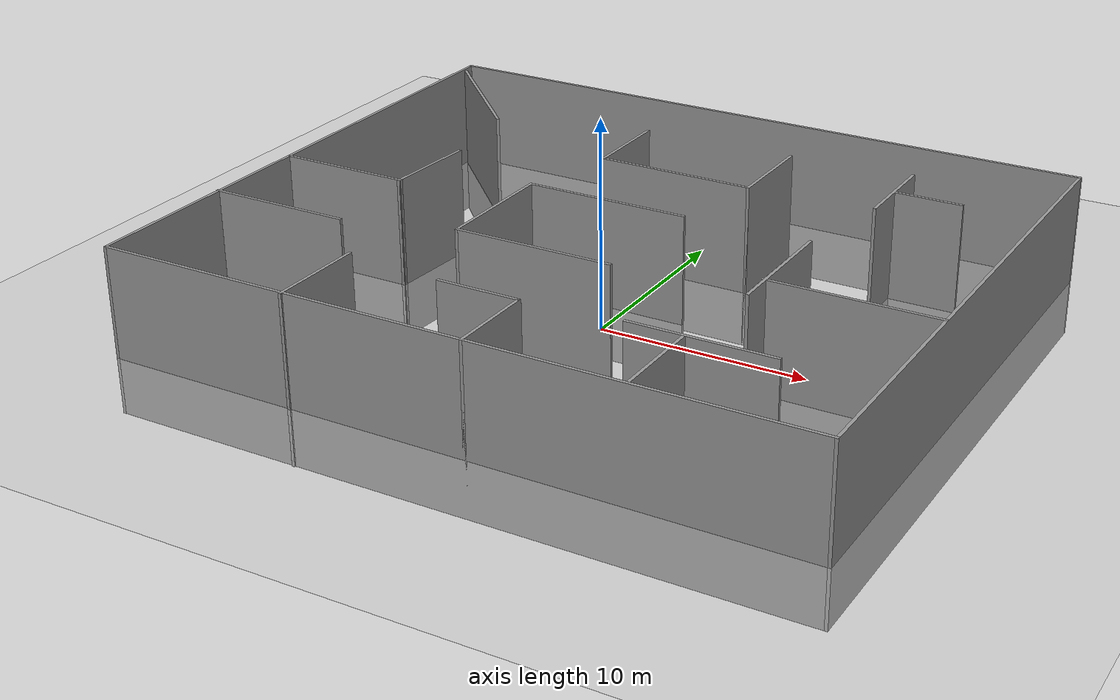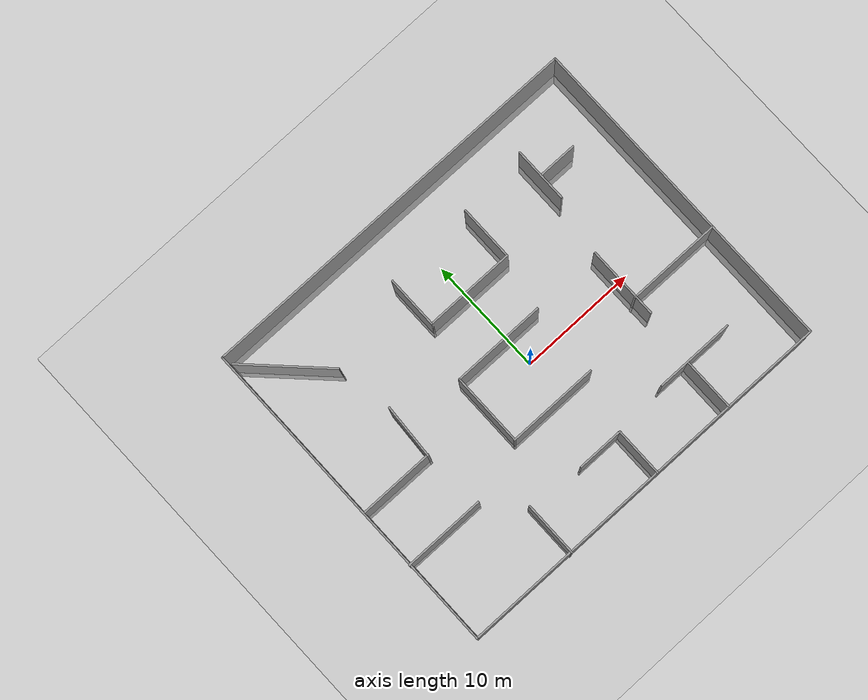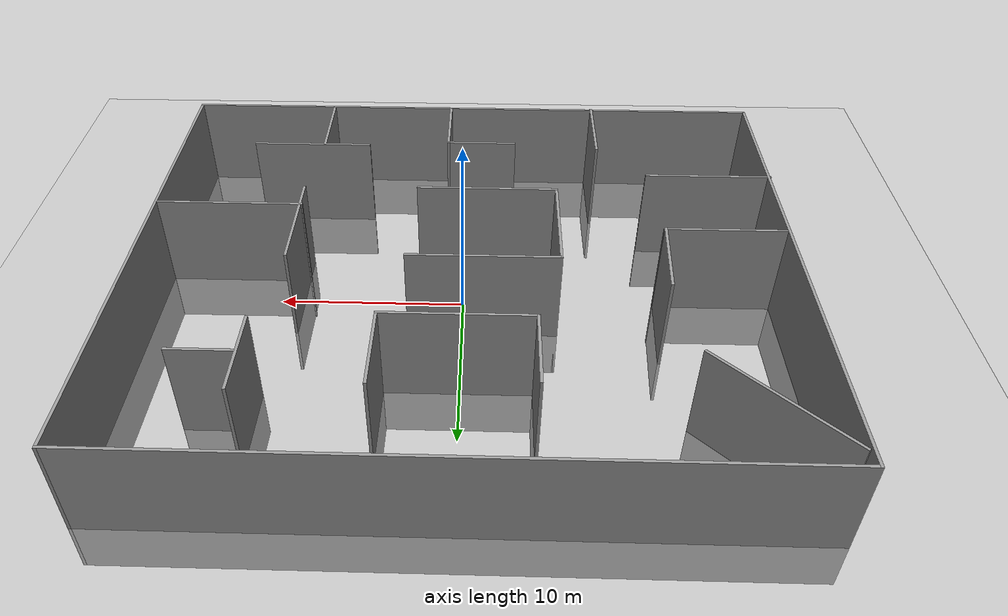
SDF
<sdf version="1.6">
 <world name="default">
  <light name="sun" type="directional">
   <pose>0 0 10 0 -0 0</pose>
   <diffuse>0.8 0.8 0.8 1</diffuse>
   <specular>0.2 0.2 0.2 1</specular>
   <attenuation>
    <range>1000</range>
    <constant>0.9</constant>
    <linear>0.01</linear>
    <quadratic>0.001</quadratic>
   </attenuation>
   <direction>-0.5 0.1 -0.9</direction>
  </light>
  <model name="ground_plane">
   <static>1</static>
   <link name="link">
    <collision name="collision">
     <geometry><plane><normal>0 0 1</normal><size>100 100</size></plane></geometry>
     <surface><friction><ode><mu>100</mu><mu2>50</mu2></ode></friction></surface>
    </collision>
    <visual name="visual">
     <cast_shadows>0</cast_shadows>
     <geometry><plane><normal>0 0 1</normal><size>100 100</size></plane></geometry>
     <material>
      <script><uri>file://media/materials/scripts/gazebo.material</uri><name>Gazebo/Grey</name></script>
     </material>
    </visual>
   </link>
  </model>
  <gravity>0 0 -9.8</gravity>
  <magnetic_field>6e-06 2.3e-05 -4.2e-05</magnetic_field>
  <atmosphere type="adiabatic"/>
  <physics name="default_physics" default="0" type="ode">
   <max_step_size>0.001</max_step_size>
   <real_time_factor>1</real_time_factor>
   <real_time_update_rate>1000</real_time_update_rate>
  </physics>
  <scene><ambient>0.4 0.4 0.4 1</ambient><background>0.7 0.7 0.7 1</background><shadows>1</shadows></scene>
  <spherical_coordinates>
   <surface_model>EARTH_WGS84</surface_model>
   <latitude_deg>0</latitude_deg>
   <longitude_deg>0</longitude_deg>
   <elevation>0</elevation>
   <heading_deg>0</heading_deg>
  </spherical_coordinates>
  <model name="indoor_03">
   <pose>-0.164639 1.33134 0 0 -0 3.13781</pose>
   <link name="Wall_0">
    <collision name="Wall_0_Collision">
     <geometry><box><size>33.75 0.15 8</size></box></geometry>
     <pose>0 0 1.25 0 -0 0</pose>
    </collision>
    <visual name="Wall_0_Visual">
     <pose>0 0 1.25 0 -0 0</pose>
     <geometry><box><size>33.75 0.15 8</size></box></geometry>
     <material>
      <script><uri>file://media/materials/scripts/gazebo.material</uri><name>Gazebo/Grey</name></script>
      <ambient>1 1 1 1</ambient>
     </material>
     <meta><layer>0</layer></meta>
    </visual>
    <pose>-0.028108 14.0148 0 0 -0 0</pose>
   </link>
   <link name="Wall_1">
    <collision name="Wall_1_Collision">
     <geometry><box><size>28.25 0.15 8</size></box></geometry>
     <pose>0 0 1.25 0 -0 0</pose>
    </collision>
    <visual name="Wall_1_Visual">
     <pose>0 0 1.25 0 -0 0</pose>
     <geometry><box><size>28.25 0.15 8</size></box></geometry>
     <material>
      <script><uri>file://media/materials/scripts/gazebo.material</uri><name>Gazebo/Grey</name></script>
      <ambient>1 1 1 1</ambient>
     </material>
     <meta><layer>0</layer></meta>
    </visual>
    <pose>16.7719 -0.035178 0 0 -0 -1.5708</pose>
   </link>
   <link name="Wall_10">
    <collision name="Wall_10_Collision">
     <geometry><box><size>4 0.15 8</size></box></geometry>
     <pose>0 0 1.25 0 -0 0</pose>
    </collision>
    <visual name="Wall_10_Visual">
     <pose>0 0 1.25 0 -0 0</pose>
     <geometry><box><size>4 0.15 8</size></box></geometry>
     <material>
      <script><uri>file://media/materials/scripts/gazebo.material</uri><name>Gazebo/Grey</name></script>
      <ambient>1 1 1 1</ambient>
     </material>
     <meta><layer>0</layer></meta>
    </visual>
    <pose>0.645905 9.91482 0 0 -0 0</pose>
   </link>
   <link name="Wall_12">
    <collision name="Wall_12_Collision">
     <geometry><box><size>4.75 0.15 8</size></box></geometry>
     <pose>0 0 1.25 0 -0 0</pose>
    </collision>
    <visual name="Wall_12_Visual">
     <pose>0 0 1.25 0 -0 0</pose>
     <geometry><box><size>4.75 0.15 8</size></box></geometry>
     <material>
      <script><uri>file://media/materials/scripts/gazebo.material</uri><name>Gazebo/Grey</name></script>
      <ambient>1 1 1 1</ambient>
     </material>
     <meta><layer>0</layer></meta>
    </visual>
    <pose>7.37488 11.7852 0 0 -0 -1.5708</pose>
   </link>
   <link name="Wall_16">
    <collision name="Wall_16_Collision">
     <geometry><box><size>7 0.15 8</size></box></geometry>
     <pose>0 0 1.25 0 -0 0</pose>
    </collision>
    <visual name="Wall_16_Visual">
     <pose>0 0 1.25 0 -0 0</pose>
     <geometry><box><size>7 0.15 8</size></box></geometry>
     <material>
      <script><uri>file://media/materials/scripts/gazebo.material</uri><name>Gazebo/Grey</name></script>
      <ambient>1 1 1 1</ambient>
     </material>
     <meta><layer>0</layer></meta>
    </visual>
    <pose>13.4031 6.69764 0 0 -0 0</pose>
   </link>
   <link name="Wall_18">
    <collision name="Wall_18_Collision">
     <geometry><box><size>6.25 0.15 8</size></box></geometry>
     <pose>0 0 1.25 0 -0 0</pose>
    </collision>
    <visual name="Wall_18_Visual">
     <pose>0 0 1.25 0 -0 0</pose>
     <geometry><box><size>6.25 0.15 8</size></box></geometry>
     <material>
      <script><uri>file://media/materials/scripts/gazebo.material</uri><name>Gazebo/Grey</name></script>
      <ambient>1 1 1 1</ambient>
     </material>
     <meta><layer>0</layer></meta>
    </visual>
    <pose>-9.01842 1.8887 0 0 -0 -1.5708</pose>
   </link>
   <link name="Wall_2">
    <collision name="Wall_2_Collision">
     <geometry><box><size>33.75 0.15 8</size></box></geometry>
     <pose>0 0 1.25 0 -0 0</pose>
    </collision>
    <visual name="Wall_2_Visual">
     <pose>0 0 1.25 0 -0 0</pose>
     <geometry><box><size>33.75 0.15 8</size></box></geometry>
     <material>
      <script><uri>file://media/materials/scripts/gazebo.material</uri><name>Gazebo/Grey</name></script>
      <ambient>1 1 1 1</ambient>
     </material>
     <meta><layer>0</layer></meta>
    </visual>
    <pose>-0.028108 -14.0852 0 0 -0 3.14159</pose>
   </link>
   <link name="Wall_20">
    <collision name="Wall_20_Collision">
     <geometry><box><size>8 0.15 8</size></box></geometry>
     <pose>0 0 1.25 0 -0 0</pose>
    </collision>
    <visual name="Wall_20_Visual">
     <pose>0 0 1.25 0 -0 0</pose>
     <geometry><box><size>8 0.15 8</size></box></geometry>
     <material>
      <script><uri>file://media/materials/scripts/gazebo.material</uri><name>Gazebo/Grey</name></script>
      <ambient>1 1 1 1</ambient>
     </material>
     <meta><layer>0</layer></meta>
    </visual>
    <pose>-12.8731 3.32048 0 0 -0 3.14159</pose>
   </link>
   <link name="Wall_22">
    <collision name="Wall_22_Collision">
     <geometry><box><size>4.75 0.15 8</size></box></geometry>
     <pose>0 0 1.25 0 -0 0</pose>
    </collision>
    <visual name="Wall_22_Visual">
     <pose>0 0 1.25 0 -0 0</pose>
     <geometry><box><size>4.75 0.15 8</size></box></geometry>
     <material>
      <script><uri>file://media/materials/scripts/gazebo.material</uri><name>Gazebo/Grey</name></script>
      <ambient>1 1 1 1</ambient>
     </material>
     <meta><layer>0</layer></meta>
    </visual>
    <pose>-10.0034 -8.26671 0 0 -0 -1.5708</pose>
   </link>
   <link name="Wall_24">
    <collision name="Wall_24_Collision">
     <geometry><box><size>3.25 0.15 8</size></box></geometry>
     <pose>0 0 1.25 0 -0 0</pose>
    </collision>
    <visual name="Wall_24_Visual">
     <pose>0 0 1.25 0 -0 0</pose>
     <geometry><box><size>3.25 0.15 8</size></box></geometry>
     <material>
      <script><uri>file://media/materials/scripts/gazebo.material</uri><name>Gazebo/Grey</name></script>
      <ambient>1 1 1 1</ambient>
     </material>
     <meta><layer>0</layer></meta>
    </visual>
    <pose>-11.6899 -8.21816 0 0 -0 0</pose>
   </link>
   <link name="Wall_26">
    <collision name="Wall_26_Collision">
     <geometry><box><size>4.75 0.15 8</size></box></geometry>
     <pose>0 0 1.25 0 -0 0</pose>
    </collision>
    <visual name="Wall_26_Visual">
     <pose>0 0 1.25 0 -0 0</pose>
     <geometry><box><size>4.75 0.15 8</size></box></geometry>
     <material>
      <script><uri>file://media/materials/scripts/gazebo.material</uri><name>Gazebo/Grey</name></script>
      <ambient>1 1 1 1</ambient>
     </material>
     <meta><layer>0</layer></meta>
    </visual>
    <pose>-4.02304 -7.74745 0 0 -0 1.5708</pose>
   </link>
   <link name="Wall_27">
    <collision name="Wall_27_Collision">
     <geometry><box><size>7.75 0.15 8</size></box></geometry>
     <pose>0 0 1.25 0 -0 0</pose>
    </collision>
    <visual name="Wall_27_Visual">
     <pose>0 0 1.25 0 -0 0</pose>
     <geometry><box><size>7.75 0.15 8</size></box></geometry>
     <material>
      <script><uri>file://media/materials/scripts/gazebo.material</uri><name>Gazebo/Grey</name></script>
      <ambient>1 1 1 1</ambient>
     </material>
     <meta><layer>0</layer></meta>
    </visual>
    <pose>-0.223039 -5.44745 0 0 -0 0</pose>
   </link>
   <link name="Wall_28">
    <collision name="Wall_28_Collision">
     <geometry><box><size>4.5 0.15 8</size></box></geometry>
     <pose>0 0 1.25 0 -0 0</pose>
    </collision>
    <visual name="Wall_28_Visual">
     <pose>0 0 1.25 0 -0 0</pose>
     <geometry><box><size>4.5 0.15 8</size></box></geometry>
     <material>
      <script><uri>file://media/materials/scripts/gazebo.material</uri><name>Gazebo/Grey</name></script>
      <ambient>1 1 1 1</ambient>
     </material>
     <meta><layer>0</layer></meta>
    </visual>
    <pose>3.57696 -7.62245 0 0 -0 -1.5708</pose>
   </link>
   <link name="Wall_3">
    <collision name="Wall_3_Collision">
     <geometry><box><size>28.25 0.15 8</size></box></geometry>
     <pose>0 0 1.25 0 -0 0</pose>
    </collision>
    <visual name="Wall_3_Visual">
     <pose>0 0 1.25 0 -0 0</pose>
     <geometry><box><size>28.25 0.15 8</size></box></geometry>
     <material>
      <script><uri>file://media/materials/scripts/gazebo.material</uri><name>Gazebo/Grey</name></script>
      <ambient>1 1 1 1</ambient>
     </material>
     <meta><layer>0</layer></meta>
    </visual>
    <pose>-16.8281 -0.035178 0 0 -0 1.5708</pose>
   </link>
   <link name="Wall_30">
    <collision name="Wall_30_Collision">
     <geometry><box><size>8 0.15 8</size></box></geometry>
     <pose>0 0 1.25 0 -0 0</pose>
    </collision>
    <visual name="Wall_30_Visual">
     <pose>0 0 1.25 0 -0 0</pose>
     <geometry><box><size>8 0.15 8</size></box></geometry>
     <material>
      <script><uri>file://media/materials/scripts/gazebo.material</uri><name>Gazebo/Grey</name></script>
      <ambient>1 1 1 1</ambient>
     </material>
     <meta><layer>0</layer></meta>
    </visual>
    <pose>13.7385 -10.4307 0 0 -0 -0.785398</pose>
   </link>
   <link name="Wall_32">
    <collision name="Wall_32_Collision">
     <geometry><box><size>4.72778 0.15 8</size></box></geometry>
     <pose>0 0 1.25 0 -0 0</pose>
    </collision>
    <visual name="Wall_32_Visual">
     <pose>0 0 1.25 0 -0 0</pose>
     <geometry><box><size>4.72778 0.15 8</size></box></geometry>
     <material>
      <script><uri>file://media/materials/scripts/gazebo.material</uri><name>Gazebo/Grey</name></script>
      <ambient>1 1 1 1</ambient>
     </material>
     <meta><layer>0</layer></meta>
    </visual>
    <pose>10.2557 -0.65655 0 0 -0 1.51096</pose>
   </link>
   <link name="Wall_33">
    <collision name="Wall_33_Collision">
     <geometry><box><size>6.5 0.15 8</size></box></geometry>
     <pose>0 0 1.25 0 -0 0</pose>
    </collision>
    <visual name="Wall_33_Visual">
     <pose>0 0 1.25 0 -0 0</pose>
     <geometry><box><size>6.5 0.15 8</size></box></geometry>
     <material>
      <script><uri>file://media/materials/scripts/gazebo.material</uri><name>Gazebo/Grey</name></script>
      <ambient>1 1 1 1</ambient>
     </material>
     <meta><layer>0</layer></meta>
    </visual>
    <pose>13.5372 1.59782 0 0 -0 0</pose>
   </link>
   <link name="Wall_35">
    <collision name="Wall_35_Collision">
     <geometry><box><size>8 0.15 8</size></box></geometry>
     <pose>0 0 1.25 0 -0 0</pose>
    </collision>
    <visual name="Wall_35_Visual">
     <pose>0 0 1.25 0 -0 0</pose>
     <geometry><box><size>8 0.15 8</size></box></geometry>
     <material>
      <script><uri>file://media/materials/scripts/gazebo.material</uri><name>Gazebo/Grey</name></script>
      <ambient>1 1 1 1</ambient>
     </material>
     <meta><layer>0</layer></meta>
    </visual>
    <pose>0.93187 -0.978992 0 0 -0 0</pose>
   </link>
   <link name="Wall_36">
    <collision name="Wall_36_Collision">
     <geometry><box><size>6.25 0.15 8</size></box></geometry>
     <pose>0 0 1.25 0 -0 0</pose>
    </collision>
    <visual name="Wall_36_Visual">
     <pose>0 0 1.25 0 -0 0</pose>
     <geometry><box><size>6.25 0.15 8</size></box></geometry>
     <material>
      <script><uri>file://media/materials/scripts/gazebo.material</uri><name>Gazebo/Grey</name></script>
      <ambient>1 1 1 1</ambient>
     </material>
     <meta><layer>0</layer></meta>
    </visual>
    <pose>4.85687 2.07101 0 0 -0 1.5708</pose>
   </link>
   <link name="Wall_37">
    <collision name="Wall_37_Collision">
     <geometry><box><size>7.75 0.15 8</size></box></geometry>
     <pose>0 0 1.25 0 -0 0</pose>
    </collision>
    <visual name="Wall_37_Visual">
     <pose>0 0 1.25 0 -0 0</pose>
     <geometry><box><size>7.75 0.15 8</size></box></geometry>
     <material>
      <script><uri>file://media/materials/scripts/gazebo.material</uri><name>Gazebo/Grey</name></script>
      <ambient>1 1 1 1</ambient>
     </material>
     <meta><layer>0</layer></meta>
    </visual>
    <pose>1.05687 5.12101 0 0 -0 3.14159</pose>
   </link>
   <link name="Wall_5">
    <collision name="Wall_5_Collision">
     <geometry><box><size>4.5 0.15 8</size></box></geometry>
     <pose>0 0 1.25 0 -0 0</pose>
    </collision>
    <visual name="Wall_5_Visual">
     <pose>0 0 1.25 0 -0 0</pose>
     <geometry><box><size>4.5 0.15 8</size></box></geometry>
     <material>
      <script><uri>file://media/materials/scripts/gazebo.material</uri><name>Gazebo/Grey</name></script>
      <ambient>1 1 1 1</ambient>
     </material>
     <meta><layer>0</layer></meta>
    </visual>
    <pose>-8.52592 11.7695 0 0 -0 -1.5708</pose>
   </link>
   <link name="Wall_7">
    <collision name="Wall_7_Collision">
     <geometry><box><size>6.75 0.15 8</size></box></geometry>
     <pose>0 0 1.25 0 -0 0</pose>
    </collision>
    <visual name="Wall_7_Visual">
     <pose>0 0 1.25 0 -0 0</pose>
     <geometry><box><size>6.75 0.15 8</size></box></geometry>
     <material>
      <script><uri>file://media/materials/scripts/gazebo.material</uri><name>Gazebo/Grey</name></script>
      <ambient>1 1 1 1</ambient>
     </material>
     <meta><layer>0</layer></meta>
    </visual>
    <pose>-9.2363 9.51194 0 0 -0 0</pose>
   </link>
   <link name="Wall_9">
    <collision name="Wall_9_Collision">
     <geometry><box><size>4.25 0.15 8</size></box></geometry>
     <pose>0 0 1.25 0 -0 0</pose>
    </collision>
    <visual name="Wall_9_Visual">
     <pose>0 0 1.25 0 -0 0</pose>
     <geometry><box><size>4.25 0.15 8</size></box></geometry>
     <material>
      <script><uri>file://media/materials/scripts/gazebo.material</uri><name>Gazebo/Grey</name></script>
      <ambient>1 1 1 1</ambient>
     </material>
     <meta><layer>0</layer></meta>
    </visual>
    <pose>-1.2791 11.9648 0 0 -0 -1.5708</pose>
   </link>
   <static>1</static>
  </model>
 </world>
</sdf>
